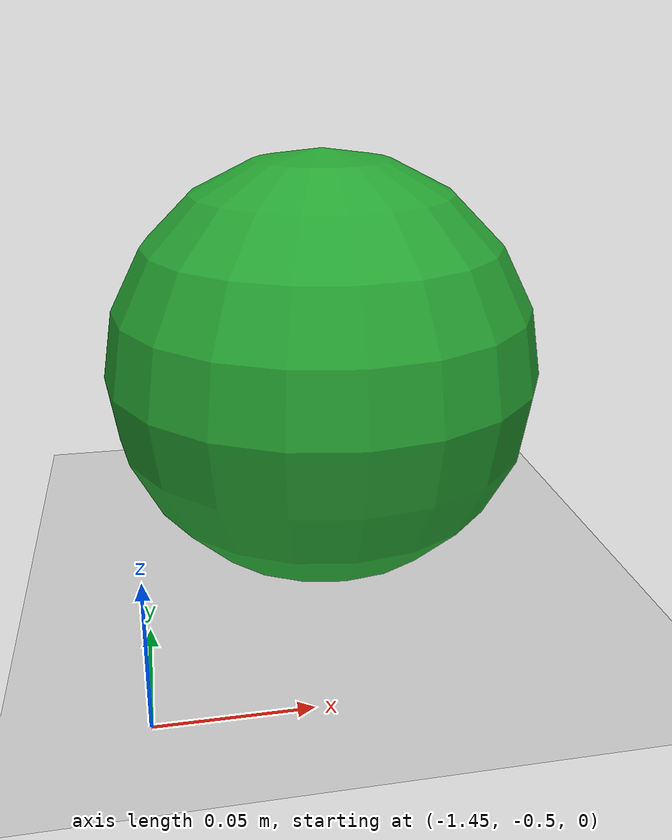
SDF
<sdf version="1.7">
 <world name="default">
  <light name="sun" type="directional">
   <pose>0 0 10 0 -0 0</pose>
   <diffuse>0.8 0.8 0.8 1</diffuse>
   <specular>0.2 0.2 0.2 1</specular>
   <attenuation>
    <range>1000</range>
    <constant>0.9</constant>
    <linear>0.01</linear>
    <quadratic>0.001</quadratic>
   </attenuation>
   <direction>-0.5 0.1 -0.9</direction>
   <spot><inner_angle>0</inner_angle><outer_angle>0</outer_angle><falloff>0</falloff></spot>
  </light>
  <model name="ground_plane">
   <static>1</static>
   <link name="link">
    <collision name="collision">
     <geometry><plane><normal>0 0 1</normal><size>100 100</size></plane></geometry>
     <surface>
      <contact><collide_bitmask>65535</collide_bitmask></contact>
      <friction><ode><mu>100</mu><mu2>50</mu2></ode></friction>
     </surface>
    </collision>
    <visual name="visual">
     <cast_shadows>0</cast_shadows>
     <geometry><plane><normal>0 0 1</normal><size>100 100</size></plane></geometry>
     <material>
      <script><uri>file://media/materials/scripts/gazebo.material</uri><name>Gazebo/Grey</name></script>
     </material>
    </visual>
   </link>
  </model>
  <gravity>0 0 -9.8</gravity>
  <magnetic_field>6e-06 2.3e-05 -4.2e-05</magnetic_field>
  <atmosphere type="adiabatic"/>
  <physics type="ode">
   <max_step_size>0.001</max_step_size>
   <real_time_factor>1</real_time_factor>
   <real_time_update_rate>1000</real_time_update_rate>
   <max_step_size>0.001</max_step_size>
  </physics>
  <scene><ambient>0.4 0.4 0.4 1</ambient><background>0.7 0.7 0.7 1</background><shadows>1</shadows></scene>
  <spherical_coordinates>
   <surface_model>EARTH_WGS84</surface_model>
   <latitude_deg>0</latitude_deg>
   <longitude_deg>0</longitude_deg>
   <elevation>0</elevation>
   <heading_deg>0</heading_deg>
  </spherical_coordinates>
  <model name="moving_sphere">
   <link name="link">
    <inertial>
     <mass>0.0001</mass>
     <inertia>
      <ixx>0.000001</ixx>
      <iyy>0.000001</iyy>
      <izz>0.000001</izz>
      <ixy>0.0</ixy>
      <ixz>0.0</ixz>
      <iyz>0.0</iyz>
     </inertia>
    </inertial>
    <self_collide>1</self_collide>
    <gravity>0</gravity>
    <visual name="visual">
     <geometry><sphere><radius>0.08</radius></sphere></geometry>
     <material>
      <script><name>Gazebo/Green</name><uri>file://media/materials/scripts/gazebo.material</uri></script>
     </material>
    </visual>
    <collision name="collision"><geometry><sphere><radius>0.07</radius></sphere></geometry></collision>
    <sensor name="bumper_sensor" type="contact">
     <update_rate>50</update_rate>
     <always_on>1</always_on>
     <visualize>1</visualize>
     <contact><collision>collision</collision><topic>__default_topic__</topic></contact>
     <plugin name="bumper_plugin" filename="libgazebo_ros_bumper.so">
      <ros><namespace>/gazebo</namespace></ros>
      <frame_name>bumper_frame</frame_name>
      <topic_name>bumper_data</topic_name>
     </plugin>
    </sensor>
   </link>
   <static>0</static>
   <pose>-1.38133 -0.408283 0.08 0 -0 0</pose>
  </model>
 </world>
</sdf>
